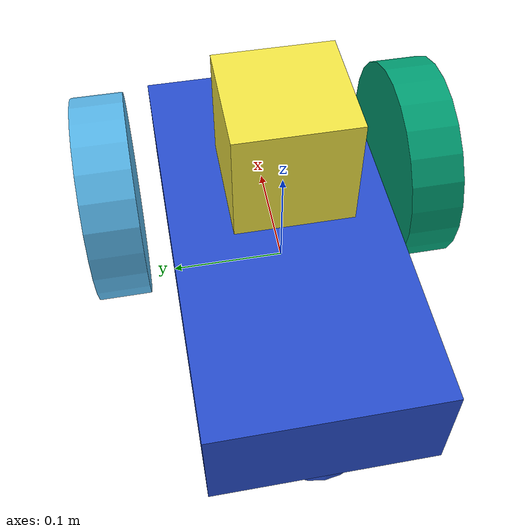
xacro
<?xml version='1.0'?>

<robot name="myrobot" xmlns:xacro="http://www.ros.org/wiki/xacro">

  <xacro:include filename="$(find mybot_gazebo)/urdf/MYBOTLASER.gazebo" />
  <xacro:include filename="$(find mybot_gazebo)/urdf/materials.xacro" />
  <xacro:include filename="$(find mybot_gazebo)/urdf/macros.xacro" />

  <link name='base_link'>
    <pose>0 0 0.1 0 0 0</pose>

    <inertial>
      <mass value="10.0"/>
      <origin xyz="0.0 0 0.1" rpy=" 0 0 0"/>
      <inertia
          ixx="0.416" ixy="0" ixz="0"
          iyy="0.142" iyz="0"
          izz="0.167"
      />
    </inertial>

    <collision name='collision'>
      <geometry>
        <box size=".4 .2 .1"/>
      </geometry>
    </collision>

    <visual name='base_link'>
      <origin xyz="0 0 0" rpy=" 0 0 0"/>
      <geometry>
        <box size=".4 .2 .1"/>
      </geometry>
    </visual>

    <collision name='caster_collision'>
      <origin xyz="-0.15 0 -0.05" rpy=" 0 0 0"/>
      <geometry>
        <sphere radius="0.05"/>
      </geometry>
      <surface>
        <friction>
          <ode>
            <mu>0</mu>
            <mu2>0</mu2>
            <slip1>1.0</slip1>
            <slip2>1.0</slip2>
          </ode>
        </friction>
      </surface>
    </collision>

    <visual name='caster_visual'>
      <origin xyz="-0.15 0 -0.05" rpy=" 0 0 0"/>
      <geometry>
        <sphere radius="0.05"/>
      </geometry>
    </visual>
  </link>

  <link name="left_wheel">
    <!--origin xyz="0.1 0.13 0.1" rpy="0 1.5707 1.5707"/-->
    <collision name="collision">
      <origin xyz="0 0 0" rpy="0 1.5707 1.5707"/>
      <geometry>
        <cylinder radius="0.1" length="0.05"/>
      </geometry>
    </collision>
    <visual name="left_wheel_visual">
      <origin xyz="0 0 0" rpy="0 1.5707 1.5707"/>
      <geometry>
        <cylinder radius="0.1" length="0.05"/>
      </geometry>
    </visual>
    <inertial>
      <origin xyz="0 0 0" rpy="0 1.5707 1.5707"/>
      <mass value="10"/>
      <cylinder_inertia m="5" r="0.1" h="0.05"/>
      <inertia
        ixx="1.0" ixy="0.0" ixz="0.0"
        iyy="1.0" iyz="0.0"
        izz="1.0"/>
    </inertial>
  </link>

  <link name="right_wheel">
    <!--origin xyz="0.1 -0.13 0.1" rpy="0 1.5707 1.5707"/-->
    <collision name="collision">
      <origin xyz="0 0 0" rpy="0 1.5707 1.5707"/>
      <geometry>
        <cylinder radius="0.1" length="0.05"/>
      </geometry>
    </collision>
    <visual name="right_wheel_visual">
      <origin xyz="0 0 0" rpy="0 1.5707 1.5707"/>
      <geometry>
        <cylinder radius="0.1" length="0.05"/>
      </geometry>
    </visual>
    <inertial>
      <origin xyz="0 0 0" rpy="0 1.5707 1.5707"/>
      <mass value="10"/>
      <cylinder_inertia m="5" r="0.1" h="0.05"/>
      <inertia
        ixx="1.0" ixy="0.0" ixz="0.0"
        iyy="1.0" iyz="0.0"
        izz="1.0"/>
    </inertial>
  </link>

  <joint type="continuous" name="left_wheel_hinge">
    <origin xyz="0.1 0.15 0" rpy="0 0 0"/>
    <child link="left_wheel"/>
    <parent link="base_link"/>
    <axis xyz="0 1 0" rpy="0 0 0"/>
    <limit effort="100" velocity="100"/>
    <joint_properties damping="0.0" friction="0.0"/>
  </joint>

  <joint type="continuous" name="right_wheel_hinge">
    <origin xyz="0.1 -0.15 0" rpy="0 0 0"/>
    <child link="right_wheel"/>
    <parent link="base_link"/>
    <axis xyz="0 1 0" rpy="0 0 0"/>
    <limit effort="100" velocity="100"/>
    <joint_properties damping="0.0" friction="0.0"/>
  </joint>

<joint name="sensor_joint" type="fixed">
    <axis xyz="0 1 0" />
    <origin xyz="0 0 0.15" rpy="0 0 0"/>
    <parent link="base_link"/>
    <child link="laser"/>
  </joint>

  <!-- Hokuyo Laser -->
  <link name="laser">
    <collision>
      <origin xyz="0 0 0" rpy="0 0 0"/>
      <geometry>
    <box size="0.1 0.1 0.1"/>
      </geometry>
    </collision>

    <visual>
      <origin xyz="0 0 0" rpy="0 0 0"/>
      <geometry>
        <box size="0.1 0.1 0.1"/>
      </geometry>
    </visual>

    <inertial>
      <mass value="1e-5" />
      <origin xyz="0 0 0" rpy="0 0 0"/>
      <inertia ixx="1e-6" ixy="0" ixz="0" iyy="1e-6" iyz="0" izz="1e-6" />
    </inertial>
  </link>

</robot>
